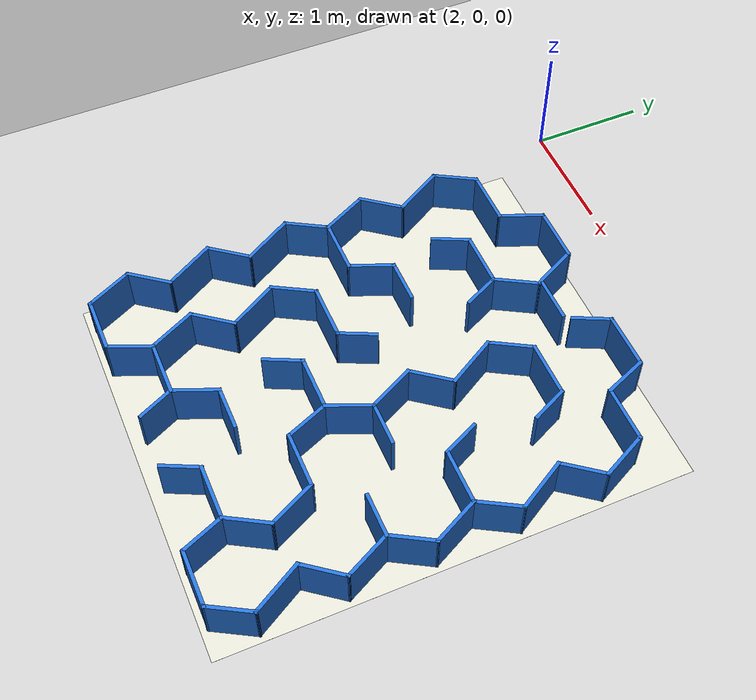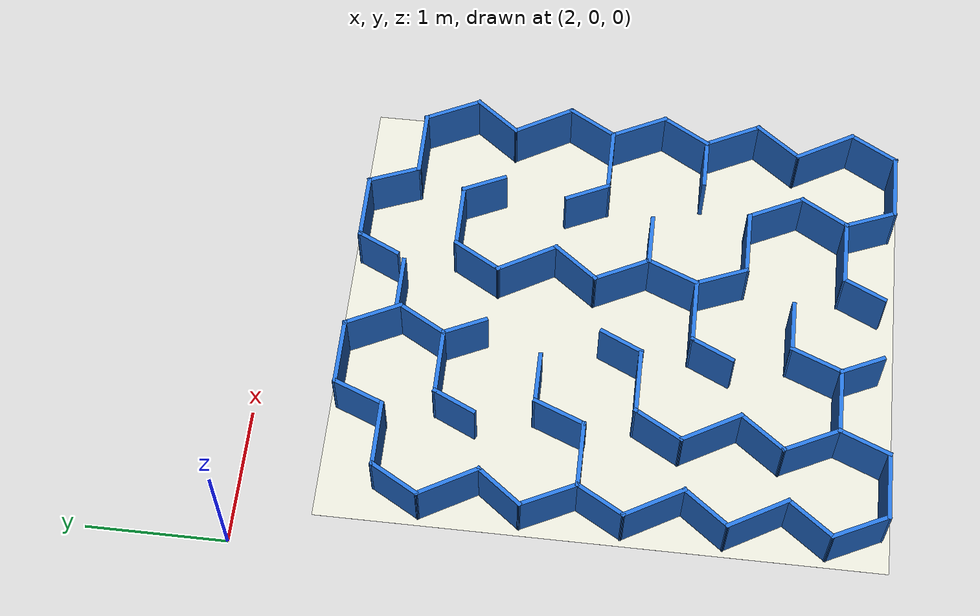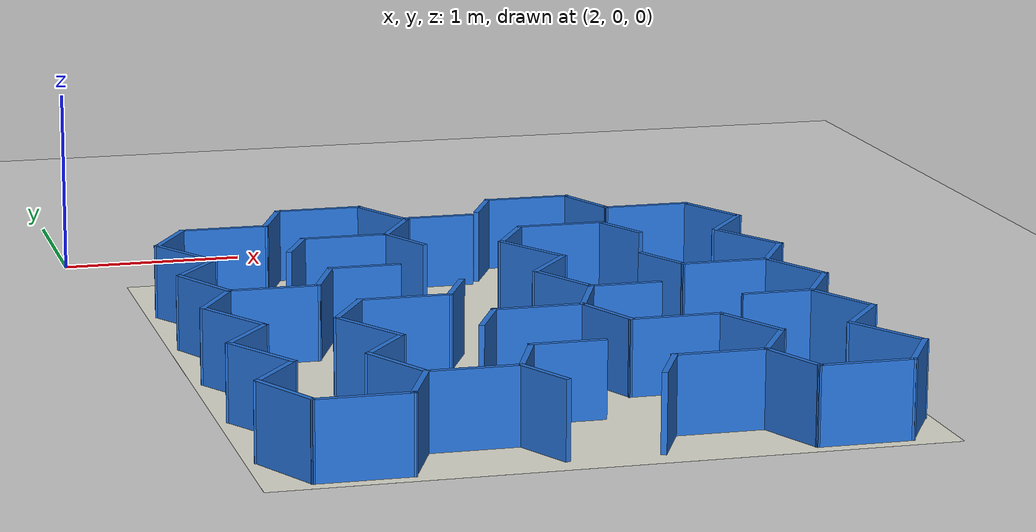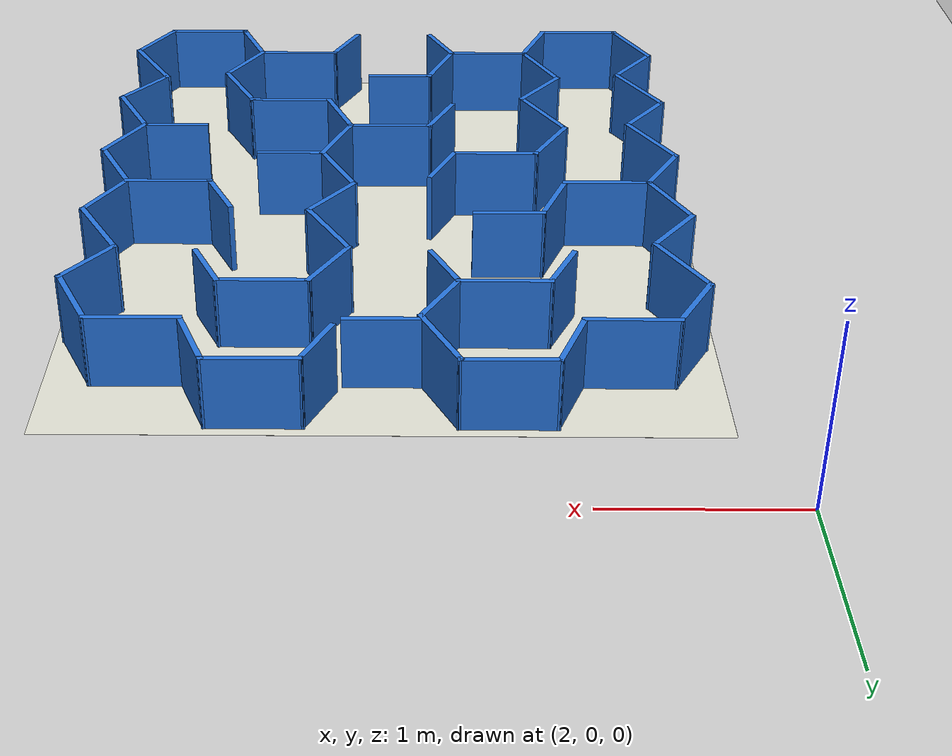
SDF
<?xml version="1.0" ?>
<sdf version="1.10">
<world name="nhom8_maze_sigma_2">
  <physics name="8ms" type="ignored">
    <max_step_size>0.008</max_step_size>
    <real_time_factor>1.0</real_time_factor>
  </physics>
  <plugin filename="gz-sim-physics-system"   name="gz::sim::systems::Physics"/>
  <plugin filename="gz-sim-user-commands-system" name="gz::sim::systems::UserCommands"/>
  <plugin filename="gz-sim-scene-broadcaster-system" name="gz::sim::systems::SceneBroadcaster"/>
  <plugin filename="gz-sim-sensors-system" name="gz::sim::systems::Sensors">
    <render_engine>ogre2</render_engine>
  </plugin>

  <light type="directional" name="sun">
    <cast_shadows>true</cast_shadows>
    <pose>0 0 10 0 0 0</pose>
    <diffuse>1 1 1 1</diffuse>
    <specular>0.5 0.5 0.5 1</specular>
    <attenuation><range>1000</range><constant>0.9</constant>
      <linear>0.01</linear><quadratic>0.001</quadratic></attenuation>
    <direction>-0.5 0.1 -0.9</direction>
  </light>

  <model name="ground_plane">
    <static>true</static>
    <link name="link">
      <collision name="collision">
        <geometry><plane><normal>0 0 1</normal><size>50.0 50.0</size></plane></geometry>
        <surface><friction><ode><mu>40</mu></ode></friction></surface>
      </collision>
      <visual name="visual">
        <geometry><plane><normal>0 0 1</normal><size>50.0 50.0</size></plane></geometry>
        <material>
          <ambient>0.8 0.8 0.8 1</ambient><diffuse>0.8 0.8 0.8 1</diffuse>
          <specular>0.8 0.8 0.8 1</specular>
        </material>
      </visual>
    </link>
  </model>

  <!--  MAZE sigma_2 (family sigma)                -->
  <!--  walls: 69   wall bbox (local): (-1.6468, -1.9401, 1.648, 1.9489)   -->
  <!--  openings: entrance=north@(0.003,1.589) hw=0.168  exit=south@(0.003,-1.937) hw=0.168   -->
  <!--  start (local): (0.0032, 1.1599) yaw=-1.5722 rad  -->
  <!--  placement center: (3.9650, -2.5350)   -->

    <model name="wall_000">
      <static>true</static>
      <pose>3.355650 -0.600000 0.2000 0 0 0.000000</pose>
      <link name="link">
        <collision name="col">
          <geometry><box><size>0.4973 0.0300 0.4000</size></box></geometry>
        </collision>
        <visual name="vis">
          <geometry><box><size>0.4973 0.0300 0.4000</size></box></geometry>
          <material><ambient>0.15 0.45 0.85 1</ambient><diffuse>0.15 0.45 0.85 1</diffuse></material>
        </visual>
      </link>
    </model>

    <model name="wall_001">
      <static>true</static>
      <pose>4.575050 -0.600000 0.2000 0 0 0.000000</pose>
      <link name="link">
        <collision name="col">
          <geometry><box><size>0.4965 0.0300 0.4000</size></box></geometry>
        </collision>
        <visual name="vis">
          <geometry><box><size>0.4965 0.0300 0.4000</size></box></geometry>
          <material><ambient>0.15 0.45 0.85 1</ambient><diffuse>0.15 0.45 0.85 1</diffuse></material>
        </visual>
      </link>
    </model>

    <model name="wall_002">
      <static>true</static>
      <pose>2.749700 -0.949300 0.2000 0 0 0.000000</pose>
      <link name="link">
        <collision name="col">
          <geometry><box><size>0.4950 0.0300 0.4000</size></box></geometry>
        </collision>
        <visual name="vis">
          <geometry><box><size>0.4950 0.0300 0.4000</size></box></geometry>
          <material><ambient>0.15 0.45 0.85 1</ambient><diffuse>0.15 0.45 0.85 1</diffuse></material>
        </visual>
      </link>
    </model>

    <model name="wall_003">
      <static>true</static>
      <pose>5.182350 -0.949300 0.2000 0 0 0.000000</pose>
      <link name="link">
        <collision name="col">
          <geometry><box><size>0.4971 0.0300 0.4000</size></box></geometry>
        </collision>
        <visual name="vis">
          <geometry><box><size>0.4971 0.0300 0.4000</size></box></geometry>
          <material><ambient>0.15 0.45 0.85 1</ambient><diffuse>0.15 0.45 0.85 1</diffuse></material>
        </visual>
      </link>
    </model>

    <model name="wall_004">
      <static>true</static>
      <pose>3.355600 -1.304300 0.2000 0 0 0.000000</pose>
      <link name="link">
        <collision name="col">
          <geometry><box><size>0.4962 0.0300 0.4000</size></box></geometry>
        </collision>
        <visual name="vis">
          <geometry><box><size>0.4962 0.0300 0.4000</size></box></geometry>
          <material><ambient>0.15 0.45 0.85 1</ambient><diffuse>0.15 0.45 0.85 1</diffuse></material>
        </visual>
      </link>
    </model>

    <model name="wall_005">
      <static>true</static>
      <pose>4.574800 -1.304300 0.2000 0 0 0.000000</pose>
      <link name="link">
        <collision name="col">
          <geometry><box><size>0.4958 0.0300 0.4000</size></box></geometry>
        </collision>
        <visual name="vis">
          <geometry><box><size>0.4958 0.0300 0.4000</size></box></geometry>
          <material><ambient>0.15 0.45 0.85 1</ambient><diffuse>0.15 0.45 0.85 1</diffuse></material>
        </visual>
      </link>
    </model>

    <model name="wall_006">
      <static>true</static>
      <pose>3.304200 -2.005700 0.2000 0 0 0.000000</pose>
      <link name="link">
        <collision name="col">
          <geometry><box><size>0.3934 0.0300 0.4000</size></box></geometry>
        </collision>
        <visual name="vis">
          <geometry><box><size>0.3934 0.0300 0.4000</size></box></geometry>
          <material><ambient>0.15 0.45 0.85 1</ambient><diffuse>0.15 0.45 0.85 1</diffuse></material>
        </visual>
      </link>
    </model>

    <model name="wall_007">
      <static>true</static>
      <pose>2.748450 -2.357300 0.2000 0 0 0.000000</pose>
      <link name="link">
        <collision name="col">
          <geometry><box><size>0.4945 0.0300 0.4000</size></box></geometry>
        </collision>
        <visual name="vis">
          <geometry><box><size>0.4945 0.0300 0.4000</size></box></geometry>
          <material><ambient>0.15 0.45 0.85 1</ambient><diffuse>0.15 0.45 0.85 1</diffuse></material>
        </visual>
      </link>
    </model>

    <model name="wall_008">
      <static>true</static>
      <pose>5.183250 -2.357300 0.2000 0 0 0.000000</pose>
      <link name="link">
        <collision name="col">
          <geometry><box><size>0.4919 0.0300 0.4000</size></box></geometry>
        </collision>
        <visual name="vis">
          <geometry><box><size>0.4919 0.0300 0.4000</size></box></geometry>
          <material><ambient>0.15 0.45 0.85 1</ambient><diffuse>0.15 0.45 0.85 1</diffuse></material>
        </visual>
      </link>
    </model>

    <model name="wall_009">
      <static>true</static>
      <pose>3.357650 -2.706300 0.2000 0 0 0.000000</pose>
      <link name="link">
        <collision name="col">
          <geometry><box><size>0.4975 0.0300 0.4000</size></box></geometry>
        </collision>
        <visual name="vis">
          <geometry><box><size>0.4975 0.0300 0.4000</size></box></geometry>
          <material><ambient>0.15 0.45 0.85 1</ambient><diffuse>0.15 0.45 0.85 1</diffuse></material>
        </visual>
      </link>
    </model>

    <model name="wall_010">
      <static>true</static>
      <pose>4.524950 -2.706300 0.2000 0 0 0.000000</pose>
      <link name="link">
        <collision name="col">
          <geometry><box><size>0.3931 0.0300 0.4000</size></box></geometry>
        </collision>
        <visual name="vis">
          <geometry><box><size>0.3931 0.0300 0.4000</size></box></geometry>
          <material><ambient>0.15 0.45 0.85 1</ambient><diffuse>0.15 0.45 0.85 1</diffuse></material>
        </visual>
      </link>
    </model>

    <model name="wall_011">
      <static>true</static>
      <pose>3.964350 -3.060200 0.2000 0 0 0.000000</pose>
      <link name="link">
        <collision name="col">
          <geometry><box><size>0.4945 0.0300 0.4000</size></box></geometry>
        </collision>
        <visual name="vis">
          <geometry><box><size>0.4945 0.0300 0.4000</size></box></geometry>
          <material><ambient>0.15 0.45 0.85 1</ambient><diffuse>0.15 0.45 0.85 1</diffuse></material>
        </visual>
      </link>
    </model>

    <model name="wall_012">
      <static>true</static>
      <pose>5.234300 -3.060200 0.2000 0 0 0.000000</pose>
      <link name="link">
        <collision name="col">
          <geometry><box><size>0.3898 0.0300 0.4000</size></box></geometry>
        </collision>
        <visual name="vis">
          <geometry><box><size>0.3898 0.0300 0.4000</size></box></geometry>
          <material><ambient>0.15 0.45 0.85 1</ambient><diffuse>0.15 0.45 0.85 1</diffuse></material>
        </visual>
      </link>
    </model>

    <model name="wall_013">
      <static>true</static>
      <pose>4.575000 -3.410600 0.2000 0 0 0.000000</pose>
      <link name="link">
        <collision name="col">
          <geometry><box><size>0.4964 0.0300 0.4000</size></box></geometry>
        </collision>
        <visual name="vis">
          <geometry><box><size>0.4964 0.0300 0.4000</size></box></geometry>
          <material><ambient>0.15 0.45 0.85 1</ambient><diffuse>0.15 0.45 0.85 1</diffuse></material>
        </visual>
      </link>
    </model>

    <model name="wall_014">
      <static>true</static>
      <pose>3.914400 -3.762400 0.2000 0 0 0.000000</pose>
      <link name="link">
        <collision name="col">
          <geometry><box><size>0.3936 0.0300 0.4000</size></box></geometry>
        </collision>
        <visual name="vis">
          <geometry><box><size>0.3936 0.0300 0.4000</size></box></geometry>
          <material><ambient>0.15 0.45 0.85 1</ambient><diffuse>0.15 0.45 0.85 1</diffuse></material>
        </visual>
      </link>
    </model>

    <model name="wall_015">
      <static>true</static>
      <pose>3.357350 -4.115400 0.2000 0 0 0.000000</pose>
      <link name="link">
        <collision name="col">
          <geometry><box><size>0.4935 0.0300 0.4000</size></box></geometry>
        </collision>
        <visual name="vis">
          <geometry><box><size>0.4935 0.0300 0.4000</size></box></geometry>
          <material><ambient>0.15 0.45 0.85 1</ambient><diffuse>0.15 0.45 0.85 1</diffuse></material>
        </visual>
      </link>
    </model>

    <model name="wall_016">
      <static>true</static>
      <pose>4.573350 -4.115400 0.2000 0 0 0.000000</pose>
      <link name="link">
        <collision name="col">
          <geometry><box><size>0.4933 0.0300 0.4000</size></box></geometry>
        </collision>
        <visual name="vis">
          <geometry><box><size>0.4933 0.0300 0.4000</size></box></geometry>
          <material><ambient>0.15 0.45 0.85 1</ambient><diffuse>0.15 0.45 0.85 1</diffuse></material>
        </visual>
      </link>
    </model>

    <model name="wall_017">
      <static>true</static>
      <pose>2.747700 -4.461300 0.2000 0 0 0.000000</pose>
      <link name="link">
        <collision name="col">
          <geometry><box><size>0.4994 0.0300 0.4000</size></box></geometry>
        </collision>
        <visual name="vis">
          <geometry><box><size>0.4994 0.0300 0.4000</size></box></geometry>
          <material><ambient>0.15 0.45 0.85 1</ambient><diffuse>0.15 0.45 0.85 1</diffuse></material>
        </visual>
      </link>
    </model>

    <model name="wall_018">
      <static>true</static>
      <pose>5.182700 -4.461300 0.2000 0 0 0.000000</pose>
      <link name="link">
        <collision name="col">
          <geometry><box><size>0.4992 0.0300 0.4000</size></box></geometry>
        </collision>
        <visual name="vis">
          <geometry><box><size>0.4992 0.0300 0.4000</size></box></geometry>
          <material><ambient>0.15 0.45 0.85 1</ambient><diffuse>0.15 0.45 0.85 1</diffuse></material>
        </visual>
      </link>
    </model>

    <model name="wall_019">
      <static>true</static>
      <pose>5.509000 -1.138300 0.2000 0 0 -1.113095</pose>
      <link name="link">
        <collision name="col">
          <geometry><box><size>0.4512 0.0300 0.4000</size></box></geometry>
        </collision>
        <visual name="vis">
          <geometry><box><size>0.4512 0.0300 0.4000</size></box></geometry>
          <material><ambient>0.15 0.45 0.85 1</ambient><diffuse>0.15 0.45 0.85 1</diffuse></material>
        </visual>
      </link>
    </model>

    <model name="wall_020">
      <static>true</static>
      <pose>4.878550 -0.774700 0.2000 0 0 -1.188417</pose>
      <link name="link">
        <collision name="col">
          <geometry><box><size>0.4066 0.0300 0.4000</size></box></geometry>
        </collision>
        <visual name="vis">
          <geometry><box><size>0.4066 0.0300 0.4000</size></box></geometry>
          <material><ambient>0.15 0.45 0.85 1</ambient><diffuse>0.15 0.45 0.85 1</diffuse></material>
        </visual>
      </link>
    </model>

    <model name="wall_021">
      <static>true</static>
      <pose>5.487300 -1.828850 0.2000 0 0 -1.047213</pose>
      <link name="link">
        <collision name="col">
          <geometry><box><size>0.4920 0.0300 0.4000</size></box></geometry>
        </collision>
        <visual name="vis">
          <geometry><box><size>0.4920 0.0300 0.4000</size></box></geometry>
          <material><ambient>0.15 0.45 0.85 1</ambient><diffuse>0.15 0.45 0.85 1</diffuse></material>
        </visual>
      </link>
    </model>

    <model name="wall_022">
      <static>true</static>
      <pose>4.875350 -1.447300 0.2000 0 0 -1.129095</pose>
      <link name="link">
        <collision name="col">
          <geometry><box><size>0.3465 0.0300 0.4000</size></box></geometry>
        </collision>
        <visual name="vis">
          <geometry><box><size>0.3465 0.0300 0.4000</size></box></geometry>
          <material><ambient>0.15 0.45 0.85 1</ambient><diffuse>0.15 0.45 0.85 1</diffuse></material>
        </visual>
      </link>
    </model>

    <model name="wall_023">
      <static>true</static>
      <pose>5.508850 -2.545700 0.2000 0 0 -1.104971</pose>
      <link name="link">
        <collision name="col">
          <geometry><box><size>0.4517 0.0300 0.4000</size></box></geometry>
        </collision>
        <visual name="vis">
          <geometry><box><size>0.4517 0.0300 0.4000</size></box></geometry>
          <material><ambient>0.15 0.45 0.85 1</ambient><diffuse>0.15 0.45 0.85 1</diffuse></material>
        </visual>
      </link>
    </model>

    <model name="wall_024">
      <static>true</static>
      <pose>4.882950 -2.212450 0.2000 0 0 -1.124088</pose>
      <link name="link">
        <collision name="col">
          <geometry><box><size>0.3512 0.0300 0.4000</size></box></geometry>
        </collision>
        <visual name="vis">
          <geometry><box><size>0.3512 0.0300 0.4000</size></box></geometry>
          <material><ambient>0.15 0.45 0.85 1</ambient><diffuse>0.15 0.45 0.85 1</diffuse></material>
        </visual>
      </link>
    </model>

    <model name="wall_025">
      <static>true</static>
      <pose>5.509000 -3.248200 0.2000 0 0 -1.103580</pose>
      <link name="link">
        <collision name="col">
          <geometry><box><size>0.4512 0.0300 0.4000</size></box></geometry>
        </collision>
        <visual name="vis">
          <geometry><box><size>0.4512 0.0300 0.4000</size></box></geometry>
          <material><ambient>0.15 0.45 0.85 1</ambient><diffuse>0.15 0.45 0.85 1</diffuse></material>
        </visual>
      </link>
    </model>

    <model name="wall_026">
      <static>true</static>
      <pose>3.682850 -0.787650 0.2000 0 0 -1.108244</pose>
      <link name="link">
        <collision name="col">
          <geometry><box><size>0.4493 0.0300 0.4000</size></box></geometry>
        </collision>
        <visual name="vis">
          <geometry><box><size>0.4493 0.0300 0.4000</size></box></geometry>
          <material><ambient>0.15 0.45 0.85 1</ambient><diffuse>0.15 0.45 0.85 1</diffuse></material>
        </visual>
      </link>
    </model>

    <model name="wall_027">
      <static>true</static>
      <pose>4.269550 -1.829600 0.2000 0 0 -1.047233</pose>
      <link name="link">
        <collision name="col">
          <geometry><box><size>0.4914 0.0300 0.4000</size></box></geometry>
        </collision>
        <visual name="vis">
          <geometry><box><size>0.4914 0.0300 0.4000</size></box></geometry>
          <material><ambient>0.15 0.45 0.85 1</ambient><diffuse>0.15 0.45 0.85 1</diffuse></material>
        </visual>
      </link>
    </model>

    <model name="wall_028">
      <static>true</static>
      <pose>5.486950 -3.938050 0.2000 0 0 -1.047171</pose>
      <link name="link">
        <collision name="col">
          <geometry><box><size>0.4902 0.0300 0.4000</size></box></geometry>
        </collision>
        <visual name="vis">
          <geometry><box><size>0.4902 0.0300 0.4000</size></box></geometry>
          <material><ambient>0.15 0.45 0.85 1</ambient><diffuse>0.15 0.45 0.85 1</diffuse></material>
        </visual>
      </link>
    </model>

    <model name="wall_029">
      <static>true</static>
      <pose>3.657450 -1.447500 0.2000 0 0 -1.123619</pose>
      <link name="link">
        <collision name="col">
          <geometry><box><size>0.3476 0.0300 0.4000</size></box></geometry>
        </collision>
        <visual name="vis">
          <geometry><box><size>0.3476 0.0300 0.4000</size></box></geometry>
          <material><ambient>0.15 0.45 0.85 1</ambient><diffuse>0.15 0.45 0.85 1</diffuse></material>
        </visual>
      </link>
    </model>

    <model name="wall_030">
      <static>true</static>
      <pose>4.248400 -2.518550 0.2000 0 0 -1.102289</pose>
      <link name="link">
        <collision name="col">
          <geometry><box><size>0.4509 0.0300 0.4000</size></box></geometry>
        </collision>
        <visual name="vis">
          <geometry><box><size>0.4509 0.0300 0.4000</size></box></geometry>
          <material><ambient>0.15 0.45 0.85 1</ambient><diffuse>0.15 0.45 0.85 1</diffuse></material>
        </visual>
      </link>
    </model>

    <model name="wall_031">
      <static>true</static>
      <pose>4.901750 -3.599750 0.2000 0 0 -1.111205</pose>
      <link name="link">
        <collision name="col">
          <geometry><box><size>0.4520 0.0300 0.4000</size></box></geometry>
        </collision>
        <visual name="vis">
          <geometry><box><size>0.4520 0.0300 0.4000</size></box></geometry>
          <material><ambient>0.15 0.45 0.85 1</ambient><diffuse>0.15 0.45 0.85 1</diffuse></material>
        </visual>
      </link>
    </model>

    <model name="wall_032">
      <static>true</static>
      <pose>4.269150 -3.235400 0.2000 0 0 -1.177997</pose>
      <link name="link">
        <collision name="col">
          <geometry><box><size>0.4094 0.0300 0.4000</size></box></geometry>
        </collision>
        <visual name="vis">
          <geometry><box><size>0.4094 0.0300 0.4000</size></box></geometry>
          <material><ambient>0.15 0.45 0.85 1</ambient><diffuse>0.15 0.45 0.85 1</diffuse></material>
        </visual>
      </link>
    </model>

    <model name="wall_033">
      <static>true</static>
      <pose>4.876550 -4.288350 0.2000 0 0 -1.178117</pose>
      <link name="link">
        <collision name="col">
          <geometry><box><size>0.4043 0.0300 0.4000</size></box></geometry>
        </collision>
        <visual name="vis">
          <geometry><box><size>0.4043 0.0300 0.4000</size></box></geometry>
          <material><ambient>0.15 0.45 0.85 1</ambient><diffuse>0.15 0.45 0.85 1</diffuse></material>
        </visual>
      </link>
    </model>

    <model name="wall_034">
      <static>true</static>
      <pose>2.443950 -1.478300 0.2000 0 0 -1.047233</pose>
      <link name="link">
        <collision name="col">
          <geometry><box><size>0.4914 0.0300 0.4000</size></box></geometry>
        </collision>
        <visual name="vis">
          <geometry><box><size>0.4914 0.0300 0.4000</size></box></geometry>
          <material><ambient>0.15 0.45 0.85 1</ambient><diffuse>0.15 0.45 0.85 1</diffuse></material>
        </visual>
      </link>
    </model>

    <model name="wall_035">
      <static>true</static>
      <pose>2.421750 -2.168150 0.2000 0 0 -1.107643</pose>
      <link name="link">
        <collision name="col">
          <geometry><box><size>0.4528 0.0300 0.4000</size></box></geometry>
        </collision>
        <visual name="vis">
          <geometry><box><size>0.4528 0.0300 0.4000</size></box></geometry>
          <material><ambient>0.15 0.45 0.85 1</ambient><diffuse>0.15 0.45 0.85 1</diffuse></material>
        </visual>
      </link>
    </model>

    <model name="wall_036">
      <static>true</static>
      <pose>3.052450 -3.234800 0.2000 0 0 -1.047248</pose>
      <link name="link">
        <collision name="col">
          <geometry><box><size>0.4930 0.0300 0.4000</size></box></geometry>
        </collision>
        <visual name="vis">
          <geometry><box><size>0.4930 0.0300 0.4000</size></box></geometry>
          <material><ambient>0.15 0.45 0.85 1</ambient><diffuse>0.15 0.45 0.85 1</diffuse></material>
        </visual>
      </link>
    </model>

    <model name="wall_037">
      <static>true</static>
      <pose>3.657800 -4.258900 0.2000 0 0 -1.124105</pose>
      <link name="link">
        <collision name="col">
          <geometry><box><size>0.3482 0.0300 0.4000</size></box></geometry>
        </collision>
        <visual name="vis">
          <geometry><box><size>0.3482 0.0300 0.4000</size></box></geometry>
          <material><ambient>0.15 0.45 0.85 1</ambient><diffuse>0.15 0.45 0.85 1</diffuse></material>
        </visual>
      </link>
    </model>

    <model name="wall_038">
      <static>true</static>
      <pose>2.443450 -2.882850 0.2000 0 0 -1.047146</pose>
      <link name="link">
        <collision name="col">
          <geometry><box><size>0.4930 0.0300 0.4000</size></box></geometry>
        </collision>
        <visual name="vis">
          <geometry><box><size>0.4930 0.0300 0.4000</size></box></geometry>
          <material><ambient>0.15 0.45 0.85 1</ambient><diffuse>0.15 0.45 0.85 1</diffuse></material>
        </visual>
      </link>
    </model>

    <model name="wall_039">
      <static>true</static>
      <pose>3.031200 -3.926450 0.2000 0 0 -1.107445</pose>
      <link name="link">
        <collision name="col">
          <geometry><box><size>0.4524 0.0300 0.4000</size></box></geometry>
        </collision>
        <visual name="vis">
          <geometry><box><size>0.4524 0.0300 0.4000</size></box></geometry>
          <material><ambient>0.15 0.45 0.85 1</ambient><diffuse>0.15 0.45 0.85 1</diffuse></material>
        </visual>
      </link>
    </model>

    <model name="wall_040">
      <static>true</static>
      <pose>2.443150 -3.585750 0.2000 0 0 -1.047092</pose>
      <link name="link">
        <collision name="col">
          <geometry><box><size>0.4925 0.0300 0.4000</size></box></geometry>
        </collision>
        <visual name="vis">
          <geometry><box><size>0.4925 0.0300 0.4000</size></box></geometry>
          <material><ambient>0.15 0.45 0.85 1</ambient><diffuse>0.15 0.45 0.85 1</diffuse></material>
        </visual>
      </link>
    </model>

    <model name="wall_041">
      <static>true</static>
      <pose>2.420950 -4.274900 0.2000 0 0 -1.112166</pose>
      <link name="link">
        <collision name="col">
          <geometry><box><size>0.4457 0.0300 0.4000</size></box></geometry>
        </collision>
        <visual name="vis">
          <geometry><box><size>0.4457 0.0300 0.4000</size></box></geometry>
          <material><ambient>0.15 0.45 0.85 1</ambient><diffuse>0.15 0.45 0.85 1</diffuse></material>
        </visual>
      </link>
    </model>

    <model name="wall_042">
      <static>true</static>
      <pose>5.509650 -4.299300 0.2000 0 0 1.052728</pose>
      <link name="link">
        <collision name="col">
          <geometry><box><size>0.4029 0.0300 0.4000</size></box></geometry>
        </collision>
        <visual name="vis">
          <geometry><box><size>0.4029 0.0300 0.4000</size></box></geometry>
          <material><ambient>0.15 0.45 0.85 1</ambient><diffuse>0.15 0.45 0.85 1</diffuse></material>
        </visual>
      </link>
    </model>

    <model name="wall_043">
      <static>true</static>
      <pose>5.487850 -3.587500 0.2000 0 0 0.916598</pose>
      <link name="link">
        <collision name="col">
          <geometry><box><size>0.4113 0.0300 0.4000</size></box></geometry>
        </collision>
        <visual name="vis">
          <geometry><box><size>0.4113 0.0300 0.4000</size></box></geometry>
          <material><ambient>0.15 0.45 0.85 1</ambient><diffuse>0.15 0.45 0.85 1</diffuse></material>
        </visual>
      </link>
    </model>

    <model name="wall_044">
      <static>true</static>
      <pose>5.508850 -2.897150 0.2000 0 0 1.044613</pose>
      <link name="link">
        <collision name="col">
          <geometry><box><size>0.4072 0.0300 0.4000</size></box></geometry>
        </collision>
        <visual name="vis">
          <geometry><box><size>0.4072 0.0300 0.4000</size></box></geometry>
          <material><ambient>0.15 0.45 0.85 1</ambient><diffuse>0.15 0.45 0.85 1</diffuse></material>
        </visual>
      </link>
    </model>

    <model name="wall_045">
      <static>true</static>
      <pose>4.900150 -3.952150 0.2000 0 0 1.042986</pose>
      <link name="link">
        <collision name="col">
          <geometry><box><size>0.4080 0.0300 0.4000</size></box></geometry>
        </collision>
        <visual name="vis">
          <geometry><box><size>0.4080 0.0300 0.4000</size></box></geometry>
          <material><ambient>0.15 0.45 0.85 1</ambient><diffuse>0.15 0.45 0.85 1</diffuse></material>
        </visual>
      </link>
    </model>

    <model name="wall_046">
      <static>true</static>
      <pose>5.508500 -2.193100 0.2000 0 0 1.049344</pose>
      <link name="link">
        <collision name="col">
          <geometry><box><size>0.4087 0.0300 0.4000</size></box></geometry>
        </collision>
        <visual name="vis">
          <geometry><box><size>0.4087 0.0300 0.4000</size></box></geometry>
          <material><ambient>0.15 0.45 0.85 1</ambient><diffuse>0.15 0.45 0.85 1</diffuse></material>
        </visual>
      </link>
    </model>

    <model name="wall_047">
      <static>true</static>
      <pose>4.272950 -4.259100 0.2000 0 0 1.124342</pose>
      <link name="link">
        <collision name="col">
          <geometry><box><size>0.3486 0.0300 0.4000</size></box></geometry>
        </collision>
        <visual name="vis">
          <geometry><box><size>0.3486 0.0300 0.4000</size></box></geometry>
          <material><ambient>0.15 0.45 0.85 1</ambient><diffuse>0.15 0.45 0.85 1</diffuse></material>
        </visual>
      </link>
    </model>

    <model name="wall_048">
      <static>true</static>
      <pose>5.486950 -1.478000 0.2000 0 0 0.918600</pose>
      <link name="link">
        <collision name="col">
          <geometry><box><size>0.4094 0.0300 0.4000</size></box></geometry>
        </collision>
        <visual name="vis">
          <geometry><box><size>0.4094 0.0300 0.4000</size></box></geometry>
          <material><ambient>0.15 0.45 0.85 1</ambient><diffuse>0.15 0.45 0.85 1</diffuse></material>
        </visual>
      </link>
    </model>

    <model name="wall_049">
      <static>true</static>
      <pose>4.269950 -2.883250 0.2000 0 0 1.177476</pose>
      <link name="link">
        <collision name="col">
          <geometry><box><size>0.4130 0.0300 0.4000</size></box></geometry>
        </collision>
        <visual name="vis">
          <geometry><box><size>0.4130 0.0300 0.4000</size></box></geometry>
          <material><ambient>0.15 0.45 0.85 1</ambient><diffuse>0.15 0.45 0.85 1</diffuse></material>
        </visual>
      </link>
    </model>

    <model name="wall_050">
      <static>true</static>
      <pose>3.660850 -3.938900 0.2000 0 0 1.184463</pose>
      <link name="link">
        <collision name="col">
          <geometry><box><size>0.4111 0.0300 0.4000</size></box></geometry>
        </collision>
        <visual name="vis">
          <geometry><box><size>0.4111 0.0300 0.4000</size></box></geometry>
          <material><ambient>0.15 0.45 0.85 1</ambient><diffuse>0.15 0.45 0.85 1</diffuse></material>
        </visual>
      </link>
    </model>

    <model name="wall_051">
      <static>true</static>
      <pose>4.269200 -2.180100 0.2000 0 0 0.915785</pose>
      <link name="link">
        <collision name="col">
          <geometry><box><size>0.4101 0.0300 0.4000</size></box></geometry>
        </collision>
        <visual name="vis">
          <geometry><box><size>0.4101 0.0300 0.4000</size></box></geometry>
          <material><ambient>0.15 0.45 0.85 1</ambient><diffuse>0.15 0.45 0.85 1</diffuse></material>
        </visual>
      </link>
    </model>

    <model name="wall_052">
      <static>true</static>
      <pose>3.663700 -3.204250 0.2000 0 0 1.127264</pose>
      <link name="link">
        <collision name="col">
          <geometry><box><size>0.3491 0.0300 0.4000</size></box></geometry>
        </collision>
        <visual name="vis">
          <geometry><box><size>0.3491 0.0300 0.4000</size></box></geometry>
          <material><ambient>0.15 0.45 0.85 1</ambient><diffuse>0.15 0.45 0.85 1</diffuse></material>
        </visual>
      </link>
    </model>

    <model name="wall_053">
      <static>true</static>
      <pose>3.054000 -4.288350 0.2000 0 0 1.178346</pose>
      <link name="link">
        <collision name="col">
          <geometry><box><size>0.4042 0.0300 0.4000</size></box></geometry>
        </collision>
        <visual name="vis">
          <geometry><box><size>0.4042 0.0300 0.4000</size></box></geometry>
          <material><ambient>0.15 0.45 0.85 1</ambient><diffuse>0.15 0.45 0.85 1</diffuse></material>
        </visual>
      </link>
    </model>

    <model name="wall_054">
      <static>true</static>
      <pose>4.248050 -1.467050 0.2000 0 0 1.047707</pose>
      <link name="link">
        <collision name="col">
          <geometry><box><size>0.4058 0.0300 0.4000</size></box></geometry>
        </collision>
        <visual name="vis">
          <geometry><box><size>0.4058 0.0300 0.4000</size></box></geometry>
          <material><ambient>0.15 0.45 0.85 1</ambient><diffuse>0.15 0.45 0.85 1</diffuse></material>
        </visual>
      </link>
    </model>

    <model name="wall_055">
      <static>true</static>
      <pose>3.659000 -2.562500 0.2000 0 0 1.131841</pose>
      <link name="link">
        <collision name="col">
          <geometry><box><size>0.3478 0.0300 0.4000</size></box></geometry>
        </collision>
        <visual name="vis">
          <geometry><box><size>0.3478 0.0300 0.4000</size></box></geometry>
          <material><ambient>0.15 0.45 0.85 1</ambient><diffuse>0.15 0.45 0.85 1</diffuse></material>
        </visual>
      </link>
    </model>

    <model name="wall_056">
      <static>true</static>
      <pose>3.052450 -3.586400 0.2000 0 0 0.917165</pose>
      <link name="link">
        <collision name="col">
          <geometry><box><size>0.4106 0.0300 0.4000</size></box></geometry>
        </collision>
        <visual name="vis">
          <geometry><box><size>0.4106 0.0300 0.4000</size></box></geometry>
          <material><ambient>0.15 0.45 0.85 1</ambient><diffuse>0.15 0.45 0.85 1</diffuse></material>
        </visual>
      </link>
    </model>

    <model name="wall_057">
      <static>true</static>
      <pose>4.273600 -0.743750 0.2000 0 0 1.127316</pose>
      <link name="link">
        <collision name="col">
          <geometry><box><size>0.3482 0.0300 0.4000</size></box></geometry>
        </collision>
        <visual name="vis">
          <geometry><box><size>0.3482 0.0300 0.4000</size></box></geometry>
          <material><ambient>0.15 0.45 0.85 1</ambient><diffuse>0.15 0.45 0.85 1</diffuse></material>
        </visual>
      </link>
    </model>

    <model name="wall_058">
      <static>true</static>
      <pose>3.030300 -2.870350 0.2000 0 0 1.051954</pose>
      <link name="link">
        <collision name="col">
          <geometry><box><size>0.4078 0.0300 0.4000</size></box></geometry>
        </collision>
        <visual name="vis">
          <geometry><box><size>0.4078 0.0300 0.4000</size></box></geometry>
          <material><ambient>0.15 0.45 0.85 1</ambient><diffuse>0.15 0.45 0.85 1</diffuse></material>
        </visual>
      </link>
    </model>

    <model name="wall_059">
      <static>true</static>
      <pose>2.443850 -3.937300 0.2000 0 0 0.921244</pose>
      <link name="link">
        <collision name="col">
          <geometry><box><size>0.4099 0.0300 0.4000</size></box></geometry>
        </collision>
        <visual name="vis">
          <geometry><box><size>0.4099 0.0300 0.4000</size></box></geometry>
          <material><ambient>0.15 0.45 0.85 1</ambient><diffuse>0.15 0.45 0.85 1</diffuse></material>
        </visual>
      </link>
    </model>

    <model name="wall_060">
      <static>true</static>
      <pose>3.682600 -1.139800 0.2000 0 0 1.052196</pose>
      <link name="link">
        <collision name="col">
          <geometry><box><size>0.4087 0.0300 0.4000</size></box></geometry>
        </collision>
        <visual name="vis">
          <geometry><box><size>0.4087 0.0300 0.4000</size></box></geometry>
          <material><ambient>0.15 0.45 0.85 1</ambient><diffuse>0.15 0.45 0.85 1</diffuse></material>
        </visual>
      </link>
    </model>

    <model name="wall_061">
      <static>true</static>
      <pose>3.051600 -2.181500 0.2000 0 0 1.187476</pose>
      <link name="link">
        <collision name="col">
          <geometry><box><size>0.4091 0.0300 0.4000</size></box></geometry>
        </collision>
        <visual name="vis">
          <geometry><box><size>0.4091 0.0300 0.4000</size></box></geometry>
          <material><ambient>0.15 0.45 0.85 1</ambient><diffuse>0.15 0.45 0.85 1</diffuse></material>
        </visual>
      </link>
    </model>

    <model name="wall_062">
      <static>true</static>
      <pose>2.443350 -3.234400 0.2000 0 0 0.916778</pose>
      <link name="link">
        <collision name="col">
          <geometry><box><size>0.4108 0.0300 0.4000</size></box></geometry>
        </collision>
        <visual name="vis">
          <geometry><box><size>0.4108 0.0300 0.4000</size></box></geometry>
          <material><ambient>0.15 0.45 0.85 1</ambient><diffuse>0.15 0.45 0.85 1</diffuse></material>
        </visual>
      </link>
    </model>

    <model name="wall_063">
      <static>true</static>
      <pose>3.055150 -1.447100 0.2000 0 0 1.130169</pose>
      <link name="link">
        <collision name="col">
          <geometry><box><size>0.3458 0.0300 0.4000</size></box></geometry>
        </collision>
        <visual name="vis">
          <geometry><box><size>0.3458 0.0300 0.4000</size></box></geometry>
          <material><ambient>0.15 0.45 0.85 1</ambient><diffuse>0.15 0.45 0.85 1</diffuse></material>
        </visual>
      </link>
    </model>

    <model name="wall_064">
      <static>true</static>
      <pose>2.421950 -2.519850 0.2000 0 0 1.045507</pose>
      <link name="link">
        <collision name="col">
          <geometry><box><size>0.4058 0.0300 0.4000</size></box></geometry>
        </collision>
        <visual name="vis">
          <geometry><box><size>0.4058 0.0300 0.4000</size></box></geometry>
          <material><ambient>0.15 0.45 0.85 1</ambient><diffuse>0.15 0.45 0.85 1</diffuse></material>
        </visual>
      </link>
    </model>

    <model name="wall_065">
      <static>true</static>
      <pose>3.052050 -0.774700 0.2000 0 0 1.190244</pose>
      <link name="link">
        <collision name="col">
          <geometry><box><size>0.4063 0.0300 0.4000</size></box></geometry>
        </collision>
        <visual name="vis">
          <geometry><box><size>0.4063 0.0300 0.4000</size></box></geometry>
          <material><ambient>0.15 0.45 0.85 1</ambient><diffuse>0.15 0.45 0.85 1</diffuse></material>
        </visual>
      </link>
    </model>

    <model name="wall_066">
      <static>true</static>
      <pose>2.443300 -1.828550 0.2000 0 0 0.914268</pose>
      <link name="link">
        <collision name="col">
          <geometry><box><size>0.4099 0.0300 0.4000</size></box></geometry>
        </collision>
        <visual name="vis">
          <geometry><box><size>0.4099 0.0300 0.4000</size></box></geometry>
          <material><ambient>0.15 0.45 0.85 1</ambient><diffuse>0.15 0.45 0.85 1</diffuse></material>
        </visual>
      </link>
    </model>

    <model name="wall_067">
      <static>true</static>
      <pose>2.422900 -1.113900 0.2000 0 0 1.050317</pose>
      <link name="link">
        <collision name="col">
          <geometry><box><size>0.4094 0.0300 0.4000</size></box></geometry>
        </collision>
        <visual name="vis">
          <geometry><box><size>0.4094 0.0300 0.4000</size></box></geometry>
          <material><ambient>0.15 0.45 0.85 1</ambient><diffuse>0.15 0.45 0.85 1</diffuse></material>
        </visual>
      </link>
    </model>

    <model name="wall_068">
      <static>true</static>
      <pose>3.967900 -0.946500 0.2000 0 0 0.000000</pose>
      <link name="link">
        <collision name="col">
          <geometry><box><size>0.3966 0.0300 0.4000</size></box></geometry>
        </collision>
        <visual name="vis">
          <geometry><box><size>0.3966 0.0300 0.4000</size></box></geometry>
          <material><ambient>0.15 0.45 0.85 1</ambient><diffuse>0.15 0.45 0.85 1</diffuse></material>
        </visual>
      </link>
    </model>

    <model name="floor">
      <static>true</static>
      <pose>3.965000 -2.535000 -0.02 0 0 0</pose>
      <link name="link">
        <collision name="col">
          <geometry><box><size>3.3948 3.9890 0.03</size></box></geometry>
        </collision>
        <visual name="vis">
          <geometry><box><size>3.3948 3.9890 0.03</size></box></geometry>
          <material><ambient>0.87 0.87 0.82 1</ambient><diffuse>0.87 0.87 0.82 1</diffuse></material>
        </visual>
      </link>
    </model>
</world>
</sdf>
